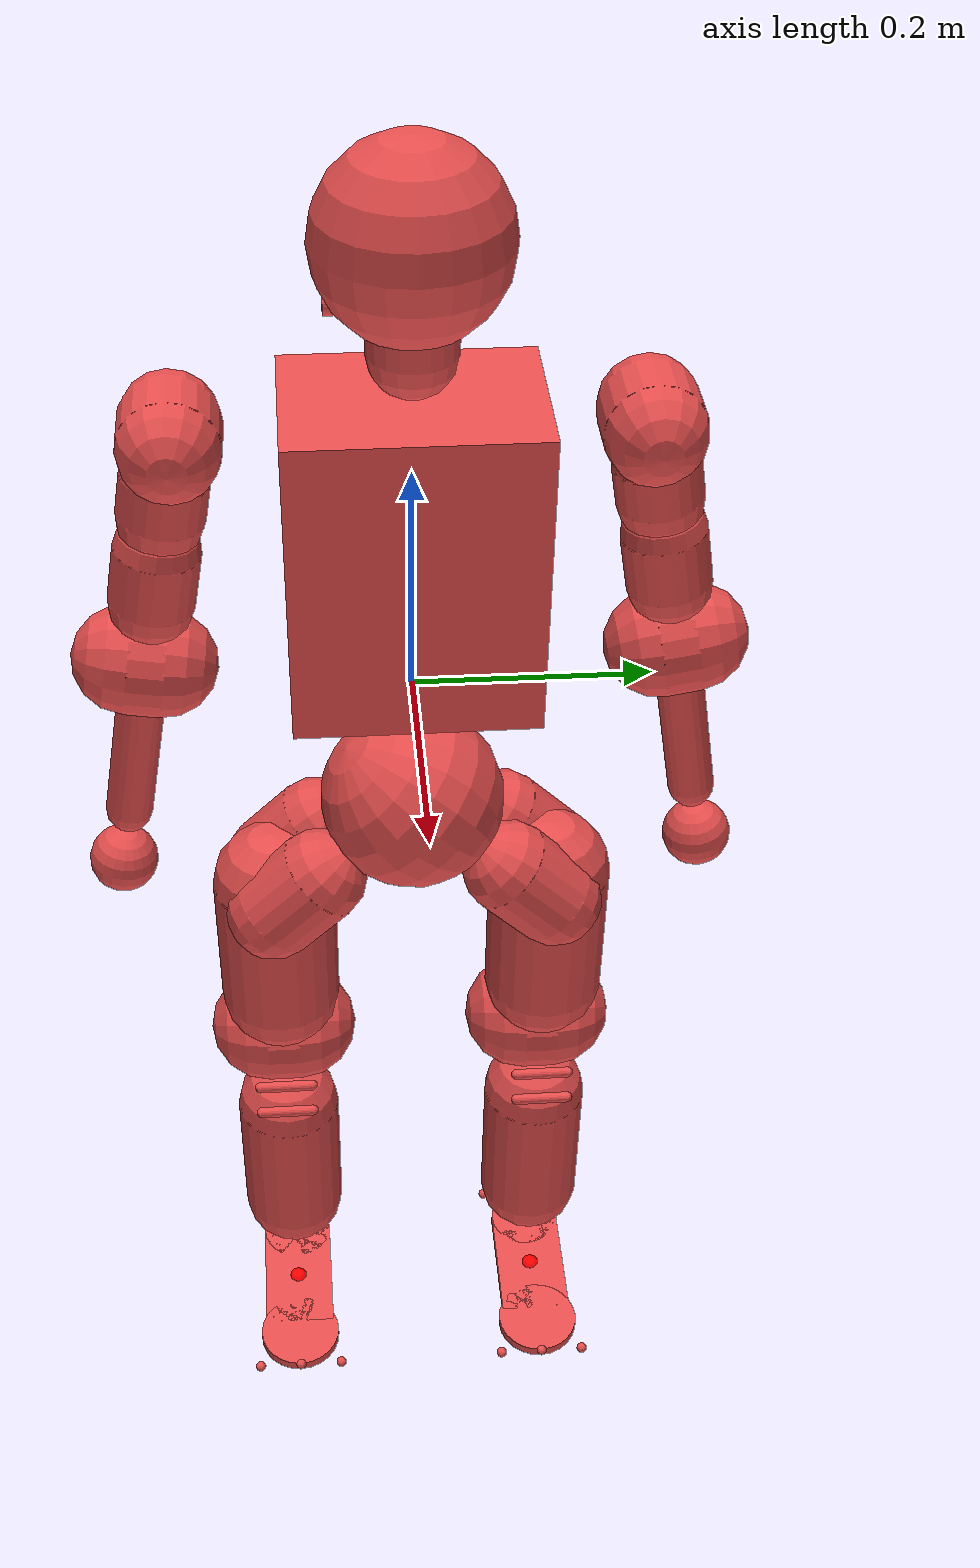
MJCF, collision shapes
<mujoco model="biped_s17">
  <compiler angle="radian" meshdir="../meshes/"/>
  <default>
    <default class="collision">
      <geom material="collision" contype="1" conaffinity="1" user="2" rgba="0.9 0.3 0.3 0.2"/>
    </default>
  </default>
  <asset>
    <material name="collision"/>
    <mesh name="torso" file="torso.STL"/>
    <mesh name="waist" file="waist.STL"/>
    <mesh name="l_leg_pitch" file="l_leg_pitch.STL"/>
    <mesh name="l_leg_roll" file="l_leg_roll.STL"/>
    <mesh name="l_leg_yaw" file="l_leg_yaw.STL"/>
    <mesh name="l_knee" file="l_knee.STL"/>
    <mesh name="l_foot_pitch" file="l_foot_pitch.STL"/>
    <mesh name="l_foot_roll" file="l_foot_roll.STL"/>
    <mesh name="r_leg_pitch" file="r_leg_pitch.STL"/>
    <mesh name="r_leg_roll" file="r_leg_roll.STL"/>
    <mesh name="r_leg_yaw" file="r_leg_yaw.STL"/>
    <mesh name="r_knee" file="r_knee.STL"/>
    <mesh name="r_foot_pitch" file="r_foot_pitch.STL"/>
    <mesh name="r_foot_roll" file="r_foot_roll.STL"/>
    <mesh name="l_arm_pitch" file="l_arm_pitch.STL"/>
    <mesh name="l_arm_roll" file="l_arm_roll.STL"/>
    <mesh name="l_arm_yaw" file="l_arm_yaw.STL"/>
    <mesh name="l_forearm" file="l_forearm.STL"/>
    <mesh name="l_handball" file="l_handball.STL"/>
    <mesh name="r_arm_pitch" file="r_arm_pitch.STL"/>
    <mesh name="r_arm_roll" file="r_arm_roll.STL"/>
    <mesh name="r_arm_yaw" file="r_arm_yaw.STL"/>
    <mesh name="r_forearm" file="r_forearm.STL"/>
    <mesh name="r_handball" file="r_handball.STL"/>
    <mesh name="head_yaw" file="head_yaw.STL"/>
    <mesh name="head_pitch" file="head_pitch.STL"/>
    <mesh name="head_camera_base" file="head_camera_base.STL"/>
    <mesh name="head_radar" file="head_radar.STL"/>
  </asset>

  <worldbody>
    <body name="base_link">
      <inertial pos="0.00202324 -3.822e-05 -0.122827" quat="0.70674 0.707473 0.000728125 0.000692342" mass="5.27737" diaginertia="0.0265656 0.0208074 0.0182124"/>
      <joint name="dummy_to_base_link" type="free" limited="false" actuatorfrclimited="false"/>
      <geom type="mesh" contype="0" conaffinity="0" group="1" density="0" rgba="1 1 1 1" mesh="waist"/>
      <geom size="0.08" pos="0.005 0 -0.12" quat="0.923764 0.382961 0 0" class="collision"/>

      <body name="leg_l1_link" pos="0 0.12441 -0.22265">
          <inertial pos="-3.227e-05 -0.0333442 0.0336706" quat="0.297024 0.642176 0.28184 0.648038" mass="0.6865" diaginertia="0.00221996 0.00213144 0.00126331"/>
          <joint name="leg_l1_joint" pos="0 0 0" axis="0 0.707107 -0.707107" range="-3.228 2.44346" actuatorfrcrange="-150 150" armature="0.003" damping="0.2" frictionloss="0.0"/>
          <geom type="mesh" contype="0" conaffinity="0" group="1" density="0" rgba="1 1 1 1" mesh="l_leg_pitch"/>
          <geom size="0.042 0.03" pos="-0.035 -0.02 0.02" quat="0.923764 0.382961 0 0" type="capsule" class="collision"/>
          <geom size="0.042 0.03" pos="0.035 -0.02 0.02" quat="0.923764 0.382961 0 0" type="capsule" class="collision"/>
          <body name="leg_l2_link">
            <inertial pos="0.0099775 6.468e-05 -0.00976037" quat="0.997557 -0.00250866 0.0689965 0.0105985" mass="2.054" diaginertia="0.00433516 0.00400691 0.00324202"/>
            <joint name="leg_l2_joint" pos="0 0 0" axis="1 0 0" range="-0.837758 2.40855" actuatorfrcrange="-150 150" armature="0.003" damping="0.2" frictionloss="0.0"/>
            <geom type="mesh" contype="0" conaffinity="0" group="1" density="0" rgba="1 1 1 1" mesh="l_leg_roll"/>
            <geom size="0.055 0.07" pos="0 0 -0.065" type="capsule" class="collision"/>
            <body name="leg_l3_link">
              <inertial pos="-0.0140249 -0.00139317 -0.159939" quat="0.679959 0.088223 0.102708 0.720641" mass="3.2746" diaginertia="0.0146119 0.0141249 0.00493058"/>
              <joint name="leg_l3_joint" pos="0 0 0" axis="0 0 1" range="-1.7453 1.7453" actuatorfrcrange="-70 70" armature="0.003" damping="0.2" frictionloss="0.0"/>
              <geom type="mesh" contype="0" conaffinity="0" group="1" density="0" rgba="1 1 1 1" mesh="l_leg_yaw"/>
              <geom size="0.055 0.015" pos="-0.025 0 -0.21" quat="0.707388 0.706825 0 0" type="capsule" class="collision"/>
              <body name="leg_l4_link" pos="-0.03 0 -0.213">
                <inertial pos="0.0226698 0.00479531 -0.114129" quat="0.887764 -0.0647792 0.0155609 0.455451" mass="2.4454" diaginertia="0.0136352 0.0131904 0.00300404"/>
                <joint name="leg_l4_joint" pos="0 0 0" axis="0 1 0" range="-0.0872665 2.53073" actuatorfrcrange="-150 150" armature="0.003" damping="0.2" frictionloss="0.0"/>
                <geom type="mesh" contype="0" conaffinity="0" group="1" density="0" rgba="1 1 1 1" mesh="l_knee"/>
                <geom size="0.05 0.075" pos="0.021 0 -0.17" type="capsule" class="collision"/>
                <geom size="0.005 0.025" pos="0.068 0 -0.02" quat="0.707388 0.706825 0 0" type="capsule" class="collision"/>
                <geom size="0.005 0.025" pos="0.074 0 -0.05" quat="0.707388 0.706825 0 0" type="capsule" class="collision"/>
                <body name="leg_l5_link" pos="0.03 0 -0.276">
                  <inertial pos="-0.00344503 -7.52e-06 -0.00936005" quat="0.692953 0.140769 0.140769 0.692953" mass="0.1314" diaginertia="2.431e-05 2.158e-05 1.245e-05"/>
                  <joint name="leg_l5_joint" pos="0 0 0" axis="0 1 0" range="-0.872665 0.523599" actuatorfrcrange="-74 74" armature="0.003" damping="0.2" frictionloss="0.0"/>
                  <geom type="mesh" contype="0" conaffinity="0" group="1" density="0" rgba="1 1 1 1" mesh="l_foot_pitch"/>
                  <body name="leg_l6_link" pos="0 0 -0.018">
                    <inertial pos="0.0287112 7.42268e-05 -0.019887" quat="-0.00243081 0.74057 -0.00273045 0.671969" mass="0.581469" diaginertia="0.0016337 0.0015067 0.000277446"/>
                    <joint name="leg_l6_joint" pos="0 0 0" axis="1 0 0" range="-0.261799 0.261799" actuatorfrcrange="-74 74" armature="0.003" damping="0.2" frictionloss="0.0"/>
                    <geom type="mesh" contype="0" conaffinity="0" group="1" density="0" rgba="1 1 1 1" mesh="l_foot_roll"/>
                    <geom size="0.035 0.005" pos="-0.02 0 -0.035" type="cylinder" class="collision"/>
                    <geom size="0.04 0.005" pos="0.11 0 -0.035" type="cylinder" class="collision"/>
                    <geom size="0.06 0.035 0.005" pos="0.038 0 -0.035" type="box" class="collision"/>
                    <geom size="0.005" pos="0.1510 0.0415 -0.03" type="sphere" class="collision"/>
                    <geom size="0.005" pos="-0.0538 0.0415 -0.03" type="sphere" class="collision"/>
                    <geom size="0.005" pos="0.1510 -0.0415 -0.03" type="sphere" class="collision"/>
                    <geom size="0.005" pos="-0.0538 -0.0415 -0.03" type="sphere" class="collision"/>
                    <geom size="0.005" pos="0.1510 0 -0.03" type="sphere" class="collision"/>
                    <geom size="0.005" pos="-0.0538 0 -0.03" type="sphere" class="collision"/>
                    <site name="left_foot" pos="0.04 0 -0.035" size="0.01" rgba="1 0 0 1"/>
                  </body>
                </body>
              </body>
            </body>
          </body>
        </body>
        <body name="leg_r1_link" pos="0 -0.12441 -0.22265">
          <inertial pos="-3.227e-05 0.0333442 0.0336706" quat="0.648038 0.28184 0.642176 0.297024" mass="0.6865" diaginertia="0.00221996 0.00213144 0.00126331"/>
          <joint name="leg_r1_joint" pos="0 0 0" axis="0 -0.707107 -0.707107" range="-2.44346 3.228" actuatorfrcrange="-150 150" armature="0.003" damping="0.2" frictionloss="0.0"/>
          <geom type="mesh" contype="0" conaffinity="0" group="1" density="0" rgba="1 1 1 1" mesh="r_leg_pitch"/>
          <geom size="0.042 0.03" pos="-0.035 0.02 0.02" quat="0.923764 -0.382961 0 0" type="capsule" class="collision"/>
          <geom size="0.042 0.03" pos="0.035 0.02 0.02" quat="0.923764 -0.382961 0 0" type="capsule" class="collision"/>
          <body name="leg_r2_link">
            <inertial pos="0.0099775 -6.468e-05 -0.00976037" quat="0.997557 0.00250866 0.0689965 -0.0105985" mass="2.054" diaginertia="0.00433516 0.00400691 0.00324202"/>
            <joint name="leg_r2_joint" pos="0 0 0" axis="1 0 0" range="-2.40855 0.837758" actuatorfrcrange="-150 150" armature="0.003" damping="0.2" frictionloss="0.0"/>
            <geom type="mesh" contype="0" conaffinity="0" group="1" density="0" rgba="1 1 1 1" mesh="r_leg_roll"/>
            <geom size="0.055 0.07" pos="0 0 -0.065" type="capsule" class="collision"/>
            <body name="leg_r3_link">
              <inertial pos="-0.0140249 0.00139317 -0.159939" quat="0.720641 0.102708 0.088223 0.679959" mass="3.2746" diaginertia="0.0146119 0.0141249 0.00493058"/>
              <joint name="leg_r3_joint" pos="0 0 0" axis="0 0 1" range="-1.7453 1.7453" actuatorfrcrange="-70 70" armature="0.003" damping="0.2" frictionloss="0.0"/>
              <geom type="mesh" contype="0" conaffinity="0" group="1" density="0" rgba="1 1 1 1" mesh="r_leg_yaw"/>
              <geom size="0.055 0.015" pos="-0.025 0 -0.21" quat="0.707388 0.706825 0 0" type="capsule" class="collision"/>
              <body name="leg_r4_link" pos="-0.03 0 -0.213">
                <inertial pos="0.0226698 -0.00479531 -0.114129" quat="0.455451 0.0155609 -0.0647792 0.887764" mass="2.4454" diaginertia="0.0136352 0.0131904 0.00300404"/>
                <joint name="leg_r4_joint" pos="0 0 0" axis="0 1 0" range="-0.0872665 2.53073" actuatorfrcrange="-150 150" armature="0.003" damping="0.2" frictionloss="0.0"/>
                <geom type="mesh" contype="0" conaffinity="0" group="1" density="0" rgba="1 1 1 1" mesh="r_knee"/>
                <geom size="0.05 0.075" pos="0.021 0 -0.17" type="capsule" class="collision"/>
                <geom size="0.005 0.025" pos="0.068 0 -0.02" quat="0.707388 0.706825 0 0" type="capsule" class="collision"/>
                <geom size="0.005 0.025" pos="0.074 0 -0.05" quat="0.707388 0.706825 0 0" type="capsule" class="collision"/>
                <body name="leg_r5_link" pos="0.03 0 -0.276">
                  <inertial pos="-0.00344503 7.52e-06 -0.00936005" quat="0.692953 0.140769 0.140769 0.692953" mass="0.1314" diaginertia="2.431e-05 2.158e-05 1.245e-05"/>
                  <joint name="leg_r5_joint" pos="0 0 0" axis="0 1 0" range="-0.872665 0.523599" actuatorfrcrange="-74 74" armature="0.003" damping="0.2" frictionloss="0.0"/>
                  <geom type="mesh" contype="0" conaffinity="0" group="1" density="0" rgba="1 1 1 1" mesh="r_foot_pitch"/>
                  <body name="leg_r6_link" pos="0 0 -0.018">
                    <inertial pos="0.0287112 -7.42268e-05 -0.019887" quat="0.0024308 0.740571 0.00273042 0.671968" mass="0.581469" diaginertia="0.0016337 0.0015067 0.000277446"/>
                    <joint name="leg_r6_joint" pos="0 0 0" axis="1 0 0" range="-0.261799 0.261799" actuatorfrcrange="-74 74" armature="0.003" damping="0.2" frictionloss="0.0"/>
                    <geom type="mesh" contype="0" conaffinity="0" group="1" density="0" rgba="1 1 1 1" mesh="r_foot_roll"/>
                    <geom size="0.035 0.005" pos="-0.02 0 -0.035" type="cylinder" class="collision"/>
                    <geom size="0.04 0.005" pos="0.11 0 -0.035" type="cylinder" class="collision"/>
                    <geom size="0.06 0.035 0.005" pos="0.038 0 -0.035" type="box" class="collision"/>
                    <geom size="0.005" pos="0.1510 0.0415 -0.03" type="sphere" class="collision"/>
                    <geom size="0.005" pos="-0.0538 0.0415 -0.03" type="sphere" class="collision"/>
                    <geom size="0.005" pos="0.1510 -0.0415 -0.03" type="sphere" class="collision"/>
                    <geom size="0.005" pos="-0.0538 -0.0415 -0.03" type="sphere" class="collision"/>
                    <geom size="0.005" pos="0.1510 0 -0.03" type="sphere" class="collision"/>
                    <geom size="0.005" pos="-0.0538 0 -0.03" type="sphere" class="collision"/>
                    <site name="right_foot" pos="0.04 0 -0.035" size="0.01" rgba="1 0 0 1"/>
                  </body>
                </body>
              </body>
            </body>
          </body>
        </body>
      <body name="torso">
        <site name="imu" pos="0 0 0" />
        <inertial pos="-0.0100514 -0.00110498 0.140586" quat="0.999642 -0.0162049 -0.0199132 0.00748437" mass="8.37745" diaginertia="0.104453 0.0832724 0.0491503"/>
        <joint name="waist_yaw_joint" pos="0 0 0" axis="0 0 1" range="-2.61799 2.61799" actuatorfrcrange="-50 50" armature="0.003" damping="0.2" frictionloss="0.0"/>
        <geom type="mesh" contype="0" conaffinity="0" group="1" density="0" rgba="1 1 1 1" mesh="torso"/>
        <geom size="0.07 0.1 0.13" pos="0.01 0 0.14" type="box" class="collision"/>
        <geom size="0.008 0.0625" pos="-0.102 0 0.288" quat="0.707105 0.707108 0 0" type="cylinder" class="collision"/>
        <body name="zarm_l1_link" pos="0 0.181 0.23843">
          <inertial pos="0.017736 -0.00289047 -6.872e-05" quat="-0.0901289 0.70032 0.0825321 0.70329" mass="0.8476" diaginertia="0.00101124 0.000899135 0.000720515"/>
          <joint name="zarm_l1_joint" pos="0 0 0" axis="0 1 0" range="-3.14159 2.0944" actuatorfrcrange="-14.1 14.1" armature="0.003" damping="0.2" frictionloss="0.0"/>
          <geom type="mesh" contype="0" conaffinity="0" group="1" density="0" rgba="1 1 1 1" mesh="l_arm_pitch"/>
          <geom size="0.04 0.02" quat="0.707105 0 0.707108 0" type="capsule" class="collision"/>
          <body name="zarm_l2_link" quat="0.996195 0.0871543 0 0">
            <inertial pos="0.00199256 0 -0.0321465" quat="0.597799 0.377699 0.377686 0.597773" mass="0.3668" diaginertia="0.00078576 0.000587472 0.000526228"/>
            <joint name="zarm_l2_joint" pos="0 0 0" axis="1 0 0" range="-0.52 3.316" actuatorfrcrange="-37 37" armature="0.003" damping="0.2" frictionloss="0.0"/>
            <geom type="mesh" contype="0" conaffinity="0" group="1" density="0" rgba="1 1 1 1" mesh="l_arm_roll"/>
            <geom size="0.035 0.0175" pos="0 0 -0.0525" type="capsule" class="collision"/>
            <body name="zarm_l3_link">
              <inertial pos="-7.73e-05 -0.0099364 -0.150833" quat="0.996992 -0.077485 -0.000148127 0.00175793" mass="1.5166" diaginertia="0.00716994 0.00690726 0.00128492"/>
              <joint name="zarm_l3_joint" pos="0 0 0" axis="0 0 1" range="-1.5708 1.5708" actuatorfrcrange="-37 37" armature="0.003" damping="0.2" frictionloss="0.0"/>
              <geom type="mesh" contype="0" conaffinity="0" group="1" density="0" rgba="1 1 1 1" mesh="l_arm_yaw"/>
              <geom size="0.035 0.025" pos="0 0 -0.125" type="capsule" class="collision"/>
              <body name="zarm_l4_link" pos="0 0 -0.2085">
                <inertial pos="-0.000693279 -0.00191472 -0.0925486" quat="0.999843 0.0163619 -0.00329901 0.00594719" mass="0.522124" diaginertia="0.00347786 0.00326967 0.000556314"/>
                <joint name="zarm_l4_joint" pos="0 0 0" axis="0 1 0" range="-2.26893 0.08726" actuatorfrcrange="-37 37" armature="0.003" damping="0.2" frictionloss="0.0"/>
                <geom type="mesh" contype="0" conaffinity="0" group="1" density="0" rgba="1 1 1 1" mesh="l_forearm"/>
                <geom size="0.045 0.015" quat="0.707388 0.706825 0 0" type="capsule" class="collision"/>
                <geom size="0.02 0.06" pos="0 0 -0.1" type="capsule" class="collision"/>
                <geom size="0.03" pos="0 0 -0.2175" class="collision" friction="0.0001 0.005 0.0001"/>
                <geom pos="0 0 -0.085236" quat="1 0 0 0" type="mesh" contype="0" conaffinity="0" group="1" density="0" rgba="1 1 1 1" mesh="l_handball"/>
                <geom size="0.005" pos="0 0 -0.2175" type="sphere" class="collision"/>
              </body>
            </body>
          </body>
        </body>
        <body name="zarm_r1_link" pos="0 -0.181 0.23843">
          <inertial pos="0.017736 0.00289047 -6.872e-05" quat="0.0901289 0.70032 -0.0825321 0.70329" mass="0.8476" diaginertia="0.00101124 0.000899135 0.000720515"/>
          <joint name="zarm_r1_joint" pos="0 0 0" axis="0 1 0" range="-3.14159 2.0944" actuatorfrcrange="-14.1 14.1" armature="0.003" damping="0.2" frictionloss="0.0"/>
          <geom type="mesh" contype="0" conaffinity="0" group="1" density="0" rgba="1 1 1 1" mesh="r_arm_pitch"/>
          <geom size="0.04 0.02" quat="0.707105 0 0.707108 0" type="capsule" class="collision"/>
          <body name="zarm_r2_link" quat="0.996195 -0.0871543 0 0">
            <inertial pos="0.00199256 0 -0.0321465" quat="0.597773 0.377686 0.377699 0.597799" mass="0.3668" diaginertia="0.00078576 0.000587472 0.000526228"/>
            <joint name="zarm_r2_joint" pos="0 0 0" axis="1 0 0" range="-3.3161 0.52" actuatorfrcrange="-37 37" armature="0.003" damping="0.2" frictionloss="0.0"/>
            <geom type="mesh" contype="0" conaffinity="0" group="1" density="0" rgba="1 1 1 1" mesh="r_arm_roll"/>
            <geom size="0.035 0.0175" pos="0 0 -0.0525" type="capsule" class="collision"/>
            <body name="zarm_r3_link">
              <inertial pos="-7.73e-05 0.0099364 -0.150833" quat="0.996992 0.077485 -0.000148127 -0.00175793" mass="1.5166" diaginertia="0.00716994 0.00690726 0.00128492"/>
              <joint name="zarm_r3_joint" pos="0 0 0" axis="0 0 1" range="-1.5708 1.5708" actuatorfrcrange="-37 37" armature="0.003" damping="0.2" frictionloss="0.0"/>
              <geom type="mesh" contype="0" conaffinity="0" group="1" density="0" rgba="1 1 1 1" mesh="r_arm_yaw"/>
              <geom size="0.035 0.025" pos="0 0 -0.125" type="capsule" class="collision"/>
              <body name="zarm_r4_link" pos="0 0 -0.2085">
                <inertial pos="-0.000693279 0.00191472 -0.0925486" quat="0.999843 -0.0163619 -0.00329901 -0.00594719" mass="0.522124" diaginertia="0.00347786 0.00326967 0.000556314"/>
                <joint name="zarm_r4_joint" pos="0 0 0" axis="0 1 0" range="-2.26893 0.08726" actuatorfrcrange="-37 37" armature="0.003" damping="0.2" frictionloss="0.0"/>
                <geom type="mesh" contype="0" conaffinity="0" group="1" density="0" rgba="1 1 1 1" mesh="r_forearm"/>
                <geom size="0.045 0.015" quat="0.707388 0.706825 0 0" type="capsule" class="collision"/>
                <geom size="0.02 0.06" pos="0 0 -0.1" type="capsule" class="collision"/>
                <geom size="0.03" pos="0 0 -0.2175" class="collision" friction="0.0001 0.005 0.0001"/>
                <geom pos="0 0 -0.085236" quat="1 0 0 0" type="mesh" contype="0" conaffinity="0" group="1" density="0" rgba="1 1 1 1" mesh="r_handball"/>
                <geom size="0.005" pos="0 0 -0.2175" type="sphere" class="collision"/>
              </body>
            </body>
          </body>
        </body>
        <body name="zhead_1_link" pos="0.0042 0 0.35369">
          <inertial pos="-0.0006027 0.00784135 0.0120802" quat="0.993684 -0.112148 0.00355464 0.00165384" mass="1.07556" diaginertia="0.00274017 0.00240047 0.00101587"/>
          <joint name="zhead_1_joint" pos="0 0 0" axis="0 0 1" range="-1.5708 1.5708" actuatorfrcrange="-1.5 1.5" armature="0.003" damping="0.2" frictionloss="0.0"/>
          <geom type="mesh" contype="0" conaffinity="0" group="1" density="0" rgba="1 1 1 1" mesh="head_yaw"/>
          <geom size="0.035 0.05" type="capsule" class="collision"/>
          <geom pos="0 0 -0.026453" quat="1 0 0 0" type="mesh" contype="0" conaffinity="0" group="1" density="0" rgba="1 1 1 1" mesh="head_radar"/>
          <body name="zhead_2_link">
            <inertial pos="0.0112168 -1.52669e-05 0.058128" quat="-0.0025487 0.842744 -0.00355735 0.538297" mass="0.61001" diaginertia="0.00293286 0.002812 0.00219503"/>
            <joint name="zhead_2_joint" pos="0 0 0" axis="0 1 0" range="-0.349066 0.785398" actuatorfrcrange="-12 12" armature="0.003" damping="0.2" frictionloss="0.0"/>
            <geom type="mesh" contype="0" conaffinity="0" group="1" density="0" rgba="1 1 1 1" mesh="head_pitch"/>
            <geom size="0.075" pos="0 0 0.035" class="collision"/>
            <geom pos="0.047118 0 0.051192" quat="0.990799 0 0.135343 0" type="mesh" contype="0" conaffinity="0" group="1" density="0" rgba="1 1 1 1" mesh="head_camera_base"/>
          </body>
        </body>
      </body>
    </body>
  </worldbody>
  <actuator>
    <motor gear="1" joint="leg_l1_joint" name="leg_l1_joint_motor" ctrllimited="true" ctrlrange="-150 150" />
    <motor gear="1" joint="leg_l2_joint" name="leg_l2_joint_motor" ctrllimited="true" ctrlrange="-150 150" />
    <motor gear="1" joint="leg_l3_joint" name="leg_l3_joint_motor" ctrllimited="true" ctrlrange="-70 70" />
    <motor gear="1" joint="leg_l4_joint" name="leg_l4_joint_motor" ctrllimited="true" ctrlrange="-150 150" />
    <motor gear="1" joint="leg_l5_joint" name="leg_l5_joint_motor" ctrllimited="true" ctrlrange="-74 74" />
    <motor gear="1" joint="leg_l6_joint" name="leg_l6_joint_motor" ctrllimited="true" ctrlrange="-74 74" />
    <motor gear="1" joint="leg_r1_joint" name="leg_r1_joint_motor" ctrllimited="true" ctrlrange="-150 150" />
    <motor gear="1" joint="leg_r2_joint" name="leg_r2_joint_motor" ctrllimited="true" ctrlrange="-150 150" />
    <motor gear="1" joint="leg_r3_joint" name="leg_r3_joint_motor" ctrllimited="true" ctrlrange="-70 70" />
    <motor gear="1" joint="leg_r4_joint" name="leg_r4_joint_motor" ctrllimited="true" ctrlrange="-150 150" />
    <motor gear="1" joint="leg_r5_joint" name="leg_r5_joint_motor" ctrllimited="true" ctrlrange="-74 74" />
    <motor gear="1" joint="leg_r6_joint" name="leg_r6_joint_motor" ctrllimited="true" ctrlrange="-74 74" />
    <motor gear="1" joint="waist_yaw_joint" name="waist_yaw_joint_motor" ctrllimited="true" ctrlrange="-80 80" />
    <motor gear="1" joint="zarm_l1_joint" name="zarm_l1_joint_motor" ctrllimited="true" ctrlrange="-14.1 14.1" />
    <motor gear="1" joint="zarm_l2_joint" name="zarm_l2_joint_motor" ctrllimited="true" ctrlrange="-37 37" />
    <motor gear="1" joint="zarm_l3_joint" name="zarm_l3_joint_motor" ctrllimited="true" ctrlrange="-37 37" />
    <motor gear="1" joint="zarm_l4_joint" name="zarm_l4_joint_motor" ctrllimited="true" ctrlrange="-37 37" />
    <motor gear="1" joint="zarm_r1_joint" name="zarm_r1_joint_motor" ctrllimited="true" ctrlrange="-14.1 14.1" />
    <motor gear="1" joint="zarm_r2_joint" name="zarm_r2_joint_motor" ctrllimited="true" ctrlrange="-37 37" />
    <motor gear="1" joint="zarm_r3_joint" name="zarm_r3_joint_motor" ctrllimited="true" ctrlrange="-37 37" />
    <motor gear="1" joint="zarm_r4_joint" name="zarm_r4_joint_motor" ctrllimited="true" ctrlrange="-37 37" />
    <motor gear="1" joint="zhead_1_joint" name="zhead_1_joint_motor" ctrllimited="true" ctrlrange="-14.1 14.1" />
    <motor gear="1" joint="zhead_2_joint" name="zhead_2_joint_motor" ctrllimited="true" ctrlrange="-14.1 14.1" />
  </actuator>
  <sensor>
    <!-- mjlab AMP task expects these names (see amp_env_cfg builtin_sensor). -->
    <gyro name="imu_ang_vel" site="imu"/>
    <velocimeter name="imu_lin_vel" site="imu"/>
    <accelerometer name="imu_lin_acc" site="imu"/>
    <!-- Legacy Kuavo / ROS sensor names (kept for compatibility). -->
    <accelerometer name="BodyAcc" site="imu" />
    <velocimeter name="BodyVel" site="imu" />
    <gyro name="BodyGyro" site="imu" />
    <framepos name="BodyPos" objtype="site" objname="imu" />
    <framequat name="BodyQuat" objtype="site" objname="imu" />
    <jointpos name="leg_l1_joint_pos" joint="leg_l1_joint" />
    <jointpos name="leg_l2_joint_pos" joint="leg_l2_joint" />
    <jointpos name="leg_l3_joint_pos" joint="leg_l3_joint" />
    <jointpos name="leg_l4_joint_pos" joint="leg_l4_joint" />
    <jointpos name="leg_l5_joint_pos" joint="leg_l5_joint" />
    <jointpos name="leg_l6_joint_pos" joint="leg_l6_joint" />
    <jointpos name="leg_r1_joint_pos" joint="leg_r1_joint" />
    <jointpos name="leg_r2_joint_pos" joint="leg_r2_joint" />
    <jointpos name="leg_r3_joint_pos" joint="leg_r3_joint" />
    <jointpos name="leg_r4_joint_pos" joint="leg_r4_joint" />
    <jointpos name="leg_r5_joint_pos" joint="leg_r5_joint" />
    <jointpos name="leg_r6_joint_pos" joint="leg_r6_joint" />
    <jointpos name="waist_yaw_joint_pos" joint="waist_yaw_joint" />
    <jointpos name="zarm_l1_joint_pos" joint="zarm_l1_joint" />
    <jointpos name="zarm_l2_joint_pos" joint="zarm_l2_joint" />
    <jointpos name="zarm_l3_joint_pos" joint="zarm_l3_joint" />
    <jointpos name="zarm_l4_joint_pos" joint="zarm_l4_joint" />
    <jointpos name="zarm_r1_joint_pos" joint="zarm_r1_joint" />
    <jointpos name="zarm_r2_joint_pos" joint="zarm_r2_joint" />
    <jointpos name="zarm_r3_joint_pos" joint="zarm_r3_joint" />
    <jointpos name="zarm_r4_joint_pos" joint="zarm_r4_joint" />
    <jointpos name="zhead_1_joint_pos" joint="zhead_1_joint" />
    <jointpos name="zhead_2_joint_pos" joint="zhead_2_joint" />
    <jointvel name="leg_l1_joint_vel" joint="leg_l1_joint" />
    <jointvel name="leg_l2_joint_vel" joint="leg_l2_joint" />
    <jointvel name="leg_l3_joint_vel" joint="leg_l3_joint" />
    <jointvel name="leg_l4_joint_vel" joint="leg_l4_joint" />
    <jointvel name="leg_l5_joint_vel" joint="leg_l5_joint" />
    <jointvel name="leg_l6_joint_vel" joint="leg_l6_joint" />
    <jointvel name="leg_r1_joint_vel" joint="leg_r1_joint" />
    <jointvel name="leg_r2_joint_vel" joint="leg_r2_joint" />
    <jointvel name="leg_r3_joint_vel" joint="leg_r3_joint" />
    <jointvel name="leg_r4_joint_vel" joint="leg_r4_joint" />
    <jointvel name="leg_r5_joint_vel" joint="leg_r5_joint" />
    <jointvel name="leg_r6_joint_vel" joint="leg_r6_joint" />
    <jointvel name="waist_yaw_joint_vel" joint="waist_yaw_joint" />
    <jointvel name="zarm_l1_joint_vel" joint="zarm_l1_joint" />
    <jointvel name="zarm_l2_joint_vel" joint="zarm_l2_joint" />
    <jointvel name="zarm_l3_joint_vel" joint="zarm_l3_joint" />
    <jointvel name="zarm_l4_joint_vel" joint="zarm_l4_joint" />
    <jointvel name="zarm_r1_joint_vel" joint="zarm_r1_joint" />
    <jointvel name="zarm_r2_joint_vel" joint="zarm_r2_joint" />
    <jointvel name="zarm_r3_joint_vel" joint="zarm_r3_joint" />
    <jointvel name="zarm_r4_joint_vel" joint="zarm_r4_joint" />
    <jointvel name="zhead_1_joint_vel" joint="zhead_1_joint" />
    <jointvel name="zhead_2_joint_vel" joint="zhead_2_joint" />
  </sensor>
</mujoco>
